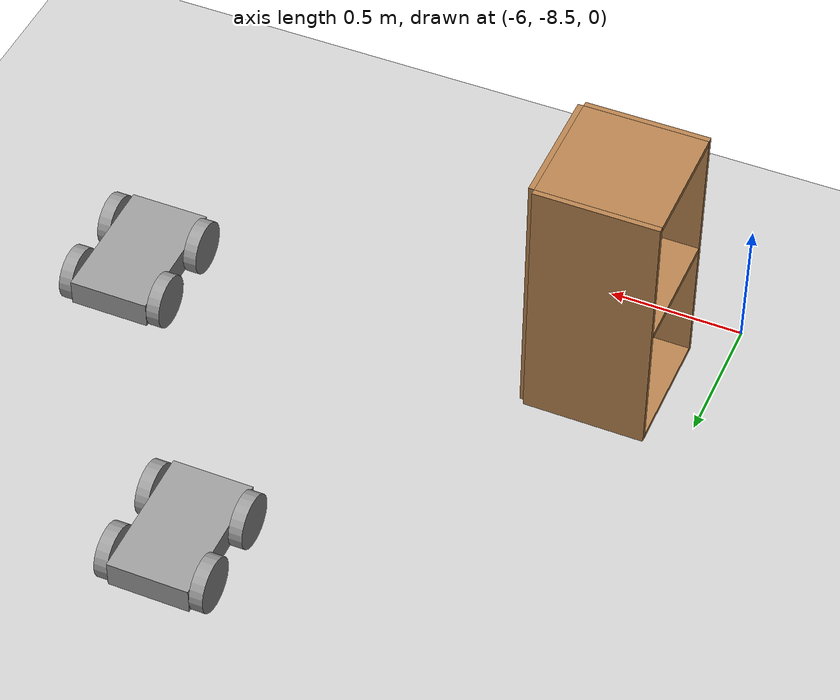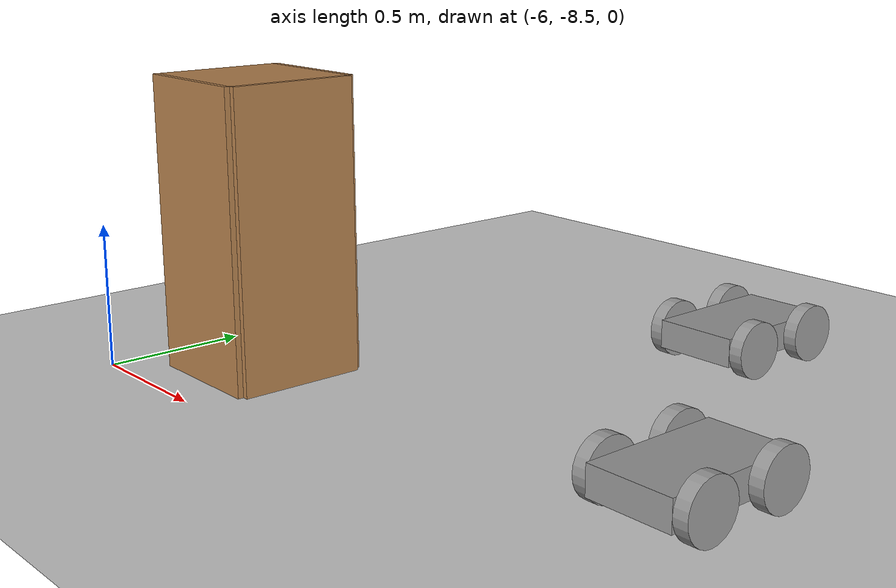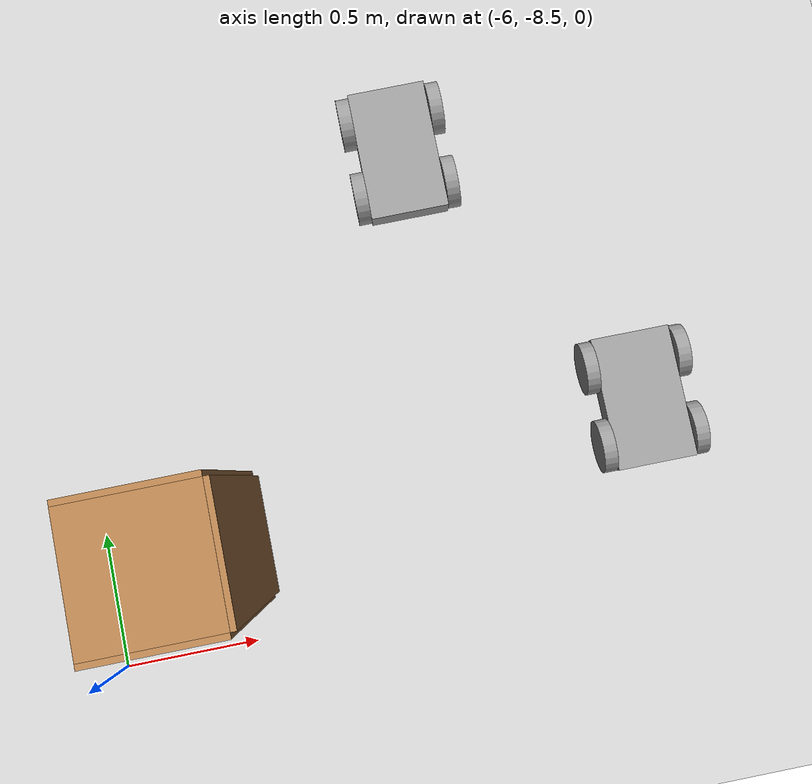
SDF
<sdf version="1.6">
 <world name="default">
  <model name="ground_plane">
   <static>1</static>
   <link name="link">
    <collision name="collision">
     <geometry><plane><normal>0 0 1</normal><size>100 100</size></plane></geometry>
     <surface><friction><ode><mu>100</mu><mu2>50</mu2></ode></friction></surface>
    </collision>
    <visual name="visual">
     <cast_shadows>0</cast_shadows>
     <geometry><plane><normal>0 0 1</normal><size>100 100</size></plane></geometry>
     <material>
      <script><uri>file://media/materials/scripts/gazebo.material</uri><name>Gazebo/Grey</name></script>
     </material>
    </visual>
   </link>
  </model>
  <model name="cabinet">
   <static>1</static>
   <link name="cabinet_bottom_plate">
    <inertial>
     <pose>0 0 -1 0 -0 0</pose>
     <inertia><ixx>2.05</ixx><ixy>0</ixy><ixz>0</ixz><iyy>2.05</iyy><iyz>0</iyz><izz>2.05</izz></inertia>
     <mass>25</mass>
    </inertial>
    <collision name="cabinet_bottom_plate_geom">
     <pose>0 0 0.01 0 -0 0</pose>
     <geometry><box><size>0.45 0.45 0.02</size></box></geometry>
    </collision>
    <visual name="cabinet_bottom_plate_geom_visual">
     <pose>0 0 0.01 0 -0 0</pose>
     <geometry><box><size>0.45 0.45 0.02</size></box></geometry>
     <material>
      <script><uri>file://media/materials/scripts/gazebo.material</uri><name>Gazebo/Wood</name></script>
     </material>
    </visual>
    <collision name="cabinet_bottom_plate_geom_cabinet_back_plate">
     <pose>0.235 0 0.51 0 -0 0</pose>
     <geometry><box><size>0.02 0.45 1.02</size></box></geometry>
    </collision>
    <visual name="cabinet_bottom_plate_geom_cabinet_back_plate_visual">
     <pose>0.235 0 0.51 0 -0 0</pose>
     <geometry><box><size>0.02 0.45 1.02</size></box></geometry>
     <material>
      <script><uri>file://media/materials/scripts/gazebo.material</uri><name>Gazebo/Wood</name></script>
     </material>
    </visual>
    <collision name="cabinet_bottom_plate_geom_cabinet_left_plate">
     <pose>0 0.235 0.51 0 -0 0</pose>
     <geometry><box><size>0.45 0.02 1.02</size></box></geometry>
    </collision>
    <visual name="cabinet_bottom_plate_geom_cabinet_left_plate_visual">
     <pose>0 0.235 0.51 0 -0 0</pose>
     <geometry><box><size>0.45 0.02 1.02</size></box></geometry>
     <material>
      <script><uri>file://media/materials/scripts/gazebo.material</uri><name>Gazebo/Wood</name></script>
     </material>
    </visual>
    <collision name="cabinet_bottom_plate_geom_cabinet_middle_plate">
     <pose>0 0 0.51 0 -0 0</pose>
     <geometry><box><size>0.45 0.45 0.02</size></box></geometry>
    </collision>
    <visual name="cabinet_bottom_plate_geom_cabinet_middle_plate_visual">
     <pose>0 0 0.51 0 -0 0</pose>
     <geometry><box><size>0.45 0.45 0.02</size></box></geometry>
     <material>
      <script><uri>file://media/materials/scripts/gazebo.material</uri><name>Gazebo/Wood</name></script>
     </material>
    </visual>
    <collision name="cabinet_bottom_plate_geom_cabinet_right_plate">
     <pose>0 -0.235 0.51 0 -0 0</pose>
     <geometry><box><size>0.45 0.02 1.02</size></box></geometry>
    </collision>
    <visual name="cabinet_bottom_plate_geom_cabinet_right_plate_visual">
     <pose>0 -0.235 0.51 0 -0 0</pose>
     <geometry><box><size>0.45 0.02 1.02</size></box></geometry>
     <material>
      <script><uri>file://media/materials/scripts/gazebo.material</uri><name>Gazebo/Wood</name></script>
     </material>
    </visual>
    <collision name="cabinet_bottom_plate_geom_cabinet_top_plate">
     <pose>0 0 1.01 0 -0 0</pose>
     <geometry><box><size>0.45 0.45 0.02</size></box></geometry>
    </collision>
    <visual name="cabinet_bottom_plate_geom_cabinet_top_plate_visual">
     <pose>0 0 1.01 0 -0 0</pose>
     <geometry><box><size>0.45 0.45 0.02</size></box></geometry>
     <material>
      <script><uri>file://media/materials/scripts/gazebo.material</uri><name>Gazebo/Wood</name></script>
     </material>
    </visual>
   </link>
   <pose>-5.63259 -8.11186 0 0 -0 0</pose>
  </model>
  <model name="robot">
   <link name="link_0">
    <inertial>
     <mass>2</mass>
     <inertia>
      <ixx>0.166667</ixx>
      <ixy>0</ixy>
      <ixz>0</ixz>
      <iyy>0.166667</iyy>
      <iyz>0</iyz>
      <izz>0.166667</izz>
     </inertia>
    </inertial>
    <visual name="visual">
     <geometry><box><size>0.3 0.5 0.1</size></box></geometry>
     <material>
      <lighting>1</lighting>
      <script><uri>file://media/materials/scripts/gazebo.material</uri><name>Gazebo/Grey</name></script>
      <ambient>0.3 0.3 0.3 1</ambient>
      <diffuse>0.7 0.7 0.7 1</diffuse>
      <specular>0.01 0.01 0.01 1</specular>
      <emissive>0 0 0 1</emissive>
      <shader type="vertex"><normal_map>__default__</normal_map></shader>
     </material>
    </visual>
    <collision name="collision">
     <geometry><box><size>0.3 0.5 0.1</size></box></geometry>
     <surface>
      <friction>
       <ode><mu>1</mu><mu2>1</mu2><fdir1>0 0 0</fdir1><slip1>0</slip1><slip2>0</slip2></ode>
       <torsional>
        <coefficient>1</coefficient>
        <patch_radius>0</patch_radius>
        <surface_radius>0</surface_radius>
        <use_patch_radius>1</use_patch_radius>
        <ode><slip>0</slip></ode>
       </torsional>
      </friction>
      <bounce><restitution_coefficient>0</restitution_coefficient><threshold>1e+06</threshold></bounce>
      <contact>
       <collide_without_contact>0</collide_without_contact>
       <collide_without_contact_bitmask>1</collide_without_contact_bitmask>
       <collide_bitmask>1</collide_bitmask>
       <ode>
        <soft_cfm>0</soft_cfm>
        <soft_erp>0.2</soft_erp>
        <kp>1e+13</kp>
        <kd>1</kd>
        <max_vel>0.01</max_vel>
        <min_depth>0</min_depth>
       </ode>
       <bullet>
        <split_impulse>1</split_impulse>
        <split_impulse_penetration_threshold>-0.01</split_impulse_penetration_threshold>
        <soft_cfm>0</soft_cfm>
        <soft_erp>0.2</soft_erp>
        <kp>1e+13</kp>
        <kd>1</kd>
       </bullet>
      </contact>
     </surface>
    </collision>
   </link>
   <link name="link_2">
    <pose>0.17501 -0.15 0 0 1.5707 0</pose>
    <inertial>
     <mass>0.1</mass>
     <inertia><ixx>0.145833</ixx><ixy>0</ixy><ixz>0</ixz><iyy>0.145833</iyy><iyz>0</iyz><izz>0.125</izz></inertia>
     <pose>0 0 0 0 1.5707 0</pose>
    </inertial>
    <visual name="visual">
     <geometry><cylinder><radius>0.1</radius><length>0.05</length></cylinder></geometry>
     <material>
      <lighting>1</lighting>
      <script><uri>file://media/materials/scripts/gazebo.material</uri><name>Gazebo/Grey</name></script>
      <ambient>0.3 0.3 0.3 1</ambient>
      <diffuse>0.7 0.7 0.7 1</diffuse>
      <specular>0.01 0.01 0.01 1</specular>
      <emissive>0 0 0 1</emissive>
      <shader type="vertex"><normal_map>__default__</normal_map></shader>
     </material>
    </visual>
    <collision name="collision">
     <geometry><cylinder><radius>0.1</radius><length>0.05</length></cylinder></geometry>
     <surface>
      <friction>
       <ode><mu>1</mu><mu2>1</mu2><fdir1>0 0 0</fdir1><slip1>0</slip1><slip2>0</slip2></ode>
       <torsional>
        <coefficient>1</coefficient>
        <patch_radius>0</patch_radius>
        <surface_radius>0</surface_radius>
        <use_patch_radius>1</use_patch_radius>
        <ode><slip>0</slip></ode>
       </torsional>
      </friction>
      <bounce><restitution_coefficient>0</restitution_coefficient><threshold>1e+06</threshold></bounce>
      <contact>
       <collide_without_contact>0</collide_without_contact>
       <collide_without_contact_bitmask>1</collide_without_contact_bitmask>
       <collide_bitmask>1</collide_bitmask>
       <ode>
        <soft_cfm>0</soft_cfm>
        <soft_erp>0.2</soft_erp>
        <kp>1e+13</kp>
        <kd>1</kd>
        <max_vel>0.01</max_vel>
        <min_depth>0</min_depth>
       </ode>
       <bullet>
        <split_impulse>1</split_impulse>
        <split_impulse_penetration_threshold>-0.01</split_impulse_penetration_threshold>
        <soft_cfm>0</soft_cfm>
        <soft_erp>0.2</soft_erp>
        <kp>1e+13</kp>
        <kd>1</kd>
       </bullet>
      </contact>
     </surface>
    </collision>
   </link>
   <link name="link_2_clone">
    <pose>0.17501 0.15 0 0 1.5707 0</pose>
    <inertial>
     <mass>0.1</mass>
     <inertia><ixx>0.145833</ixx><ixy>0</ixy><ixz>0</ixz><iyy>0.145833</iyy><iyz>0</iyz><izz>0.125</izz></inertia>
     <pose>0 0 0 0 1.5707 0</pose>
    </inertial>
    <visual name="visual">
     <geometry><cylinder><radius>0.1</radius><length>0.05</length></cylinder></geometry>
     <material>
      <lighting>1</lighting>
      <script><uri>file://media/materials/scripts/gazebo.material</uri><name>Gazebo/Grey</name></script>
      <ambient>0.3 0.3 0.3 1</ambient>
      <diffuse>0.7 0.7 0.7 1</diffuse>
      <specular>0.01 0.01 0.01 1</specular>
      <emissive>0 0 0 1</emissive>
      <shader type="vertex"><normal_map>__default__</normal_map></shader>
     </material>
    </visual>
    <collision name="collision">
     <geometry><cylinder><radius>0.1</radius><length>0.05</length></cylinder></geometry>
     <surface>
      <friction>
       <ode><mu>1</mu><mu2>1</mu2><fdir1>0 0 0</fdir1><slip1>0</slip1><slip2>0</slip2></ode>
       <torsional>
        <coefficient>1</coefficient>
        <patch_radius>0</patch_radius>
        <surface_radius>0</surface_radius>
        <use_patch_radius>1</use_patch_radius>
        <ode><slip>0</slip></ode>
       </torsional>
      </friction>
      <bounce><restitution_coefficient>0</restitution_coefficient><threshold>1e+06</threshold></bounce>
      <contact>
       <collide_without_contact>0</collide_without_contact>
       <collide_without_contact_bitmask>1</collide_without_contact_bitmask>
       <collide_bitmask>1</collide_bitmask>
       <ode>
        <soft_cfm>0</soft_cfm>
        <soft_erp>0.2</soft_erp>
        <kp>1e+13</kp>
        <kd>1</kd>
        <max_vel>0.01</max_vel>
        <min_depth>0</min_depth>
       </ode>
       <bullet>
        <split_impulse>1</split_impulse>
        <split_impulse_penetration_threshold>-0.01</split_impulse_penetration_threshold>
        <soft_cfm>0</soft_cfm>
        <soft_erp>0.2</soft_erp>
        <kp>1e+13</kp>
        <kd>1</kd>
       </bullet>
      </contact>
     </surface>
    </collision>
   </link>
   <link name="link_3">
    <pose>-0.175013 -0.15 0 0 -1.5707 0</pose>
    <inertial>
     <mass>0.1</mass>
     <inertia><ixx>0.145833</ixx><ixy>0</ixy><ixz>0</ixz><iyy>0.145833</iyy><iyz>0</iyz><izz>0.125</izz></inertia>
    </inertial>
    <visual name="visual">
     <geometry><cylinder><radius>0.1</radius><length>0.05</length></cylinder></geometry>
     <material>
      <lighting>1</lighting>
      <script><uri>file://media/materials/scripts/gazebo.material</uri><name>Gazebo/Grey</name></script>
      <ambient>0.3 0.3 0.3 1</ambient>
      <diffuse>0.7 0.7 0.7 1</diffuse>
      <specular>0.01 0.01 0.01 1</specular>
      <emissive>0 0 0 1</emissive>
      <shader type="vertex"><normal_map>__default__</normal_map></shader>
     </material>
    </visual>
    <collision name="collision">
     <geometry><cylinder><radius>0.1</radius><length>0.05</length></cylinder></geometry>
     <surface>
      <friction>
       <ode><mu>1</mu><mu2>1</mu2><fdir1>0 0 0</fdir1><slip1>0</slip1><slip2>0</slip2></ode>
       <torsional>
        <coefficient>1</coefficient>
        <patch_radius>0</patch_radius>
        <surface_radius>0</surface_radius>
        <use_patch_radius>1</use_patch_radius>
        <ode><slip>0</slip></ode>
       </torsional>
      </friction>
      <bounce><restitution_coefficient>0</restitution_coefficient><threshold>1e+06</threshold></bounce>
      <contact>
       <collide_without_contact>0</collide_without_contact>
       <collide_without_contact_bitmask>1</collide_without_contact_bitmask>
       <collide_bitmask>1</collide_bitmask>
       <ode>
        <soft_cfm>0</soft_cfm>
        <soft_erp>0.2</soft_erp>
        <kp>1e+13</kp>
        <kd>1</kd>
        <max_vel>0.01</max_vel>
        <min_depth>0</min_depth>
       </ode>
       <bullet>
        <split_impulse>1</split_impulse>
        <split_impulse_penetration_threshold>-0.01</split_impulse_penetration_threshold>
        <soft_cfm>0</soft_cfm>
        <soft_erp>0.2</soft_erp>
        <kp>1e+13</kp>
        <kd>1</kd>
       </bullet>
      </contact>
     </surface>
    </collision>
   </link>
   <link name="link_3_clone">
    <pose>-0.17501 0.15 0 0 -1.5707 0</pose>
    <inertial>
     <mass>0.1</mass>
     <inertia><ixx>0.145833</ixx><ixy>0</ixy><ixz>0</ixz><iyy>0.145833</iyy><iyz>0</iyz><izz>0.125</izz></inertia>
    </inertial>
    <visual name="visual">
     <geometry><cylinder><radius>0.1</radius><length>0.05</length></cylinder></geometry>
     <material>
      <lighting>1</lighting>
      <script><uri>file://media/materials/scripts/gazebo.material</uri><name>Gazebo/Grey</name></script>
      <ambient>0.3 0.3 0.3 1</ambient>
      <diffuse>0.7 0.7 0.7 1</diffuse>
      <specular>0.01 0.01 0.01 1</specular>
      <emissive>0 0 0 1</emissive>
      <shader type="vertex"><normal_map>__default__</normal_map></shader>
     </material>
    </visual>
    <collision name="collision">
     <geometry><cylinder><radius>0.1</radius><length>0.05</length></cylinder></geometry>
     <surface>
      <friction>
       <ode><mu>1</mu><mu2>1</mu2><fdir1>0 0 0</fdir1><slip1>0</slip1><slip2>0</slip2></ode>
       <torsional>
        <coefficient>1</coefficient>
        <patch_radius>0</patch_radius>
        <surface_radius>0</surface_radius>
        <use_patch_radius>1</use_patch_radius>
        <ode><slip>0</slip></ode>
       </torsional>
      </friction>
      <bounce><restitution_coefficient>0</restitution_coefficient><threshold>1e+06</threshold></bounce>
      <contact>
       <collide_without_contact>0</collide_without_contact>
       <collide_without_contact_bitmask>1</collide_without_contact_bitmask>
       <collide_bitmask>1</collide_bitmask>
       <ode>
        <soft_cfm>0</soft_cfm>
        <soft_erp>0.2</soft_erp>
        <kp>1e+13</kp>
        <kd>1</kd>
        <max_vel>0.01</max_vel>
        <min_depth>0</min_depth>
       </ode>
       <bullet>
        <split_impulse>1</split_impulse>
        <split_impulse_penetration_threshold>-0.01</split_impulse_penetration_threshold>
        <soft_cfm>0</soft_cfm>
        <soft_erp>0.2</soft_erp>
        <kp>1e+13</kp>
        <kd>1</kd>
       </bullet>
      </contact>
     </surface>
    </collision>
   </link>
   <joint name="link_0_JOINT_0" type="revolute">
    <parent>link_0</parent>
    <child>link_2</child>
    <axis>
     <xyz>0 0 1</xyz>
     <use_parent_model_frame>0</use_parent_model_frame>
     <limit>
      <lower>-1.79769e+308</lower>
      <upper>1.79769e+308</upper>
      <effort>-1</effort>
      <velocity>-1</velocity>
     </limit>
     <dynamics>
      <spring_reference>0</spring_reference>
      <spring_stiffness>0</spring_stiffness>
      <damping>0</damping>
     </dynamics>
    </axis>
    <physics>
     <ode><limit><cfm>0</cfm><erp>0.2</erp></limit><suspension><cfm>0</cfm><erp>0.2</erp></suspension></ode>
    </physics>
   </joint>
   <joint name="link_0_JOINT_4" type="revolute">
    <parent>link_0</parent>
    <child>link_3</child>
    <axis>
     <xyz>0 0 1</xyz>
     <use_parent_model_frame>0</use_parent_model_frame>
     <limit>
      <lower>-1.79769e+308</lower>
      <upper>1.79769e+308</upper>
      <effort>-1</effort>
      <velocity>-1</velocity>
     </limit>
     <dynamics>
      <spring_reference>0</spring_reference>
      <spring_stiffness>0</spring_stiffness>
      <damping>0</damping>
     </dynamics>
    </axis>
    <physics>
     <ode><limit><cfm>0</cfm><erp>0.2</erp></limit><suspension><cfm>0</cfm><erp>0.2</erp></suspension></ode>
    </physics>
   </joint>
   <joint name="link_0_JOINT_5" type="revolute">
    <parent>link_0</parent>
    <child>link_2_clone</child>
    <axis>
     <xyz>0 0 1</xyz>
     <use_parent_model_frame>0</use_parent_model_frame>
     <limit>
      <lower>-1.79769e+308</lower>
      <upper>1.79769e+308</upper>
      <effort>-1</effort>
      <velocity>-1</velocity>
     </limit>
     <dynamics>
      <spring_reference>0</spring_reference>
      <spring_stiffness>0</spring_stiffness>
      <damping>0</damping>
     </dynamics>
    </axis>
    <physics>
     <ode><limit><cfm>0</cfm><erp>0.2</erp></limit><suspension><cfm>0</cfm><erp>0.2</erp></suspension></ode>
    </physics>
   </joint>
   <joint name="link_0_JOINT_6" type="revolute">
    <parent>link_0</parent>
    <child>link_3_clone</child>
    <axis>
     <xyz>0 0 1</xyz>
     <use_parent_model_frame>0</use_parent_model_frame>
     <limit>
      <lower>-1.79769e+308</lower>
      <upper>1.79769e+308</upper>
      <effort>-1</effort>
      <velocity>-1</velocity>
     </limit>
     <dynamics>
      <spring_reference>0</spring_reference>
      <spring_stiffness>0</spring_stiffness>
      <damping>0</damping>
     </dynamics>
    </axis>
    <physics>
     <ode><limit><cfm>0</cfm><erp>0.2</erp></limit><suspension><cfm>0</cfm><erp>0.2</erp></suspension></ode>
    </physics>
   </joint>
   <static>0</static>
   <pose>-4.61407 -6.76882 0.1 -1.8e-05 4e-06 0.000271</pose>
  </model>
  <model name="robot_clone">
   <link name="link_0">
    <inertial>
     <mass>2</mass>
     <inertia>
      <ixx>0.166667</ixx>
      <ixy>0</ixy>
      <ixz>0</ixz>
      <iyy>0.166667</iyy>
      <iyz>0</iyz>
      <izz>0.166667</izz>
     </inertia>
    </inertial>
    <visual name="visual">
     <geometry><box><size>0.3 0.5 0.1</size></box></geometry>
     <material>
      <lighting>1</lighting>
      <script><uri>file://media/materials/scripts/gazebo.material</uri><name>Gazebo/Grey</name></script>
      <ambient>0.3 0.3 0.3 1</ambient>
      <diffuse>0.7 0.7 0.7 1</diffuse>
      <specular>0.01 0.01 0.01 1</specular>
      <emissive>0 0 0 1</emissive>
      <shader type="vertex"><normal_map>__default__</normal_map></shader>
     </material>
    </visual>
    <collision name="collision">
     <geometry><box><size>0.3 0.5 0.1</size></box></geometry>
     <surface>
      <friction>
       <ode><mu>1</mu><mu2>1</mu2><fdir1>0 0 0</fdir1><slip1>0</slip1><slip2>0</slip2></ode>
       <torsional>
        <coefficient>1</coefficient>
        <patch_radius>0</patch_radius>
        <surface_radius>0</surface_radius>
        <use_patch_radius>1</use_patch_radius>
        <ode><slip>0</slip></ode>
       </torsional>
      </friction>
      <bounce><restitution_coefficient>0</restitution_coefficient><threshold>1e+06</threshold></bounce>
      <contact>
       <collide_without_contact>0</collide_without_contact>
       <collide_without_contact_bitmask>1</collide_without_contact_bitmask>
       <collide_bitmask>1</collide_bitmask>
       <ode>
        <soft_cfm>0</soft_cfm>
        <soft_erp>0.2</soft_erp>
        <kp>1e+13</kp>
        <kd>1</kd>
        <max_vel>0.01</max_vel>
        <min_depth>0</min_depth>
       </ode>
       <bullet>
        <split_impulse>1</split_impulse>
        <split_impulse_penetration_threshold>-0.01</split_impulse_penetration_threshold>
        <soft_cfm>0</soft_cfm>
        <soft_erp>0.2</soft_erp>
        <kp>1e+13</kp>
        <kd>1</kd>
       </bullet>
      </contact>
     </surface>
    </collision>
   </link>
   <link name="link_2">
    <pose>0.17501 -0.15 0 0 1.5707 0</pose>
    <inertial>
     <mass>0.1</mass>
     <inertia><ixx>0.145833</ixx><ixy>0</ixy><ixz>0</ixz><iyy>0.145833</iyy><iyz>0</iyz><izz>0.125</izz></inertia>
     <pose>0 0 0 0 1.5707 0</pose>
    </inertial>
    <visual name="visual">
     <geometry><cylinder><radius>0.1</radius><length>0.05</length></cylinder></geometry>
     <material>
      <lighting>1</lighting>
      <script><uri>file://media/materials/scripts/gazebo.material</uri><name>Gazebo/Grey</name></script>
      <ambient>0.3 0.3 0.3 1</ambient>
      <diffuse>0.7 0.7 0.7 1</diffuse>
      <specular>0.01 0.01 0.01 1</specular>
      <emissive>0 0 0 1</emissive>
      <shader type="vertex"><normal_map>__default__</normal_map></shader>
     </material>
    </visual>
    <collision name="collision">
     <geometry><cylinder><radius>0.1</radius><length>0.05</length></cylinder></geometry>
     <surface>
      <friction>
       <ode><mu>1</mu><mu2>1</mu2><fdir1>0 0 0</fdir1><slip1>0</slip1><slip2>0</slip2></ode>
       <torsional>
        <coefficient>1</coefficient>
        <patch_radius>0</patch_radius>
        <surface_radius>0</surface_radius>
        <use_patch_radius>1</use_patch_radius>
        <ode><slip>0</slip></ode>
       </torsional>
      </friction>
      <bounce><restitution_coefficient>0</restitution_coefficient><threshold>1e+06</threshold></bounce>
      <contact>
       <collide_without_contact>0</collide_without_contact>
       <collide_without_contact_bitmask>1</collide_without_contact_bitmask>
       <collide_bitmask>1</collide_bitmask>
       <ode>
        <soft_cfm>0</soft_cfm>
        <soft_erp>0.2</soft_erp>
        <kp>1e+13</kp>
        <kd>1</kd>
        <max_vel>0.01</max_vel>
        <min_depth>0</min_depth>
       </ode>
       <bullet>
        <split_impulse>1</split_impulse>
        <split_impulse_penetration_threshold>-0.01</split_impulse_penetration_threshold>
        <soft_cfm>0</soft_cfm>
        <soft_erp>0.2</soft_erp>
        <kp>1e+13</kp>
        <kd>1</kd>
       </bullet>
      </contact>
     </surface>
    </collision>
   </link>
   <link name="link_2_clone">
    <pose>0.17501 0.15 0 0 1.5707 0</pose>
    <inertial>
     <mass>0.1</mass>
     <inertia><ixx>0.145833</ixx><ixy>0</ixy><ixz>0</ixz><iyy>0.145833</iyy><iyz>0</iyz><izz>0.125</izz></inertia>
     <pose>0 0 0 0 1.5707 0</pose>
    </inertial>
    <visual name="visual">
     <geometry><cylinder><radius>0.1</radius><length>0.05</length></cylinder></geometry>
     <material>
      <lighting>1</lighting>
      <script><uri>file://media/materials/scripts/gazebo.material</uri><name>Gazebo/Grey</name></script>
      <ambient>0.3 0.3 0.3 1</ambient>
      <diffuse>0.7 0.7 0.7 1</diffuse>
      <specular>0.01 0.01 0.01 1</specular>
      <emissive>0 0 0 1</emissive>
      <shader type="vertex"><normal_map>__default__</normal_map></shader>
     </material>
    </visual>
    <collision name="collision">
     <geometry><cylinder><radius>0.1</radius><length>0.05</length></cylinder></geometry>
     <surface>
      <friction>
       <ode><mu>1</mu><mu2>1</mu2><fdir1>0 0 0</fdir1><slip1>0</slip1><slip2>0</slip2></ode>
       <torsional>
        <coefficient>1</coefficient>
        <patch_radius>0</patch_radius>
        <surface_radius>0</surface_radius>
        <use_patch_radius>1</use_patch_radius>
        <ode><slip>0</slip></ode>
       </torsional>
      </friction>
      <bounce><restitution_coefficient>0</restitution_coefficient><threshold>1e+06</threshold></bounce>
      <contact>
       <collide_without_contact>0</collide_without_contact>
       <collide_without_contact_bitmask>1</collide_without_contact_bitmask>
       <collide_bitmask>1</collide_bitmask>
       <ode>
        <soft_cfm>0</soft_cfm>
        <soft_erp>0.2</soft_erp>
        <kp>1e+13</kp>
        <kd>1</kd>
        <max_vel>0.01</max_vel>
        <min_depth>0</min_depth>
       </ode>
       <bullet>
        <split_impulse>1</split_impulse>
        <split_impulse_penetration_threshold>-0.01</split_impulse_penetration_threshold>
        <soft_cfm>0</soft_cfm>
        <soft_erp>0.2</soft_erp>
        <kp>1e+13</kp>
        <kd>1</kd>
       </bullet>
      </contact>
     </surface>
    </collision>
   </link>
   <link name="link_3">
    <pose>-0.175013 -0.15 0 0 -1.5707 0</pose>
    <inertial>
     <mass>0.1</mass>
     <inertia><ixx>0.145833</ixx><ixy>0</ixy><ixz>0</ixz><iyy>0.145833</iyy><iyz>0</iyz><izz>0.125</izz></inertia>
    </inertial>
    <visual name="visual">
     <geometry><cylinder><radius>0.1</radius><length>0.05</length></cylinder></geometry>
     <material>
      <lighting>1</lighting>
      <script><uri>file://media/materials/scripts/gazebo.material</uri><name>Gazebo/Grey</name></script>
      <ambient>0.3 0.3 0.3 1</ambient>
      <diffuse>0.7 0.7 0.7 1</diffuse>
      <specular>0.01 0.01 0.01 1</specular>
      <emissive>0 0 0 1</emissive>
      <shader type="vertex"><normal_map>__default__</normal_map></shader>
     </material>
    </visual>
    <collision name="collision">
     <geometry><cylinder><radius>0.1</radius><length>0.05</length></cylinder></geometry>
     <surface>
      <friction>
       <ode><mu>1</mu><mu2>1</mu2><fdir1>0 0 0</fdir1><slip1>0</slip1><slip2>0</slip2></ode>
       <torsional>
        <coefficient>1</coefficient>
        <patch_radius>0</patch_radius>
        <surface_radius>0</surface_radius>
        <use_patch_radius>1</use_patch_radius>
        <ode><slip>0</slip></ode>
       </torsional>
      </friction>
      <bounce><restitution_coefficient>0</restitution_coefficient><threshold>1e+06</threshold></bounce>
      <contact>
       <collide_without_contact>0</collide_without_contact>
       <collide_without_contact_bitmask>1</collide_without_contact_bitmask>
       <collide_bitmask>1</collide_bitmask>
       <ode>
        <soft_cfm>0</soft_cfm>
        <soft_erp>0.2</soft_erp>
        <kp>1e+13</kp>
        <kd>1</kd>
        <max_vel>0.01</max_vel>
        <min_depth>0</min_depth>
       </ode>
       <bullet>
        <split_impulse>1</split_impulse>
        <split_impulse_penetration_threshold>-0.01</split_impulse_penetration_threshold>
        <soft_cfm>0</soft_cfm>
        <soft_erp>0.2</soft_erp>
        <kp>1e+13</kp>
        <kd>1</kd>
       </bullet>
      </contact>
     </surface>
    </collision>
   </link>
   <link name="link_3_clone">
    <pose>-0.17501 0.15 0 0 -1.5707 0</pose>
    <inertial>
     <mass>0.1</mass>
     <inertia><ixx>0.145833</ixx><ixy>0</ixy><ixz>0</ixz><iyy>0.145833</iyy><iyz>0</iyz><izz>0.125</izz></inertia>
    </inertial>
    <visual name="visual">
     <geometry><cylinder><radius>0.1</radius><length>0.05</length></cylinder></geometry>
     <material>
      <lighting>1</lighting>
      <script><uri>file://media/materials/scripts/gazebo.material</uri><name>Gazebo/Grey</name></script>
      <ambient>0.3 0.3 0.3 1</ambient>
      <diffuse>0.7 0.7 0.7 1</diffuse>
      <specular>0.01 0.01 0.01 1</specular>
      <emissive>0 0 0 1</emissive>
      <shader type="vertex"><normal_map>__default__</normal_map></shader>
     </material>
    </visual>
    <collision name="collision">
     <geometry><cylinder><radius>0.1</radius><length>0.05</length></cylinder></geometry>
     <surface>
      <friction>
       <ode><mu>1</mu><mu2>1</mu2><fdir1>0 0 0</fdir1><slip1>0</slip1><slip2>0</slip2></ode>
       <torsional>
        <coefficient>1</coefficient>
        <patch_radius>0</patch_radius>
        <surface_radius>0</surface_radius>
        <use_patch_radius>1</use_patch_radius>
        <ode><slip>0</slip></ode>
       </torsional>
      </friction>
      <bounce><restitution_coefficient>0</restitution_coefficient><threshold>1e+06</threshold></bounce>
      <contact>
       <collide_without_contact>0</collide_without_contact>
       <collide_without_contact_bitmask>1</collide_without_contact_bitmask>
       <collide_bitmask>1</collide_bitmask>
       <ode>
        <soft_cfm>0</soft_cfm>
        <soft_erp>0.2</soft_erp>
        <kp>1e+13</kp>
        <kd>1</kd>
        <max_vel>0.01</max_vel>
        <min_depth>0</min_depth>
       </ode>
       <bullet>
        <split_impulse>1</split_impulse>
        <split_impulse_penetration_threshold>-0.01</split_impulse_penetration_threshold>
        <soft_cfm>0</soft_cfm>
        <soft_erp>0.2</soft_erp>
        <kp>1e+13</kp>
        <kd>1</kd>
       </bullet>
      </contact>
     </surface>
    </collision>
   </link>
   <joint name="link_0_JOINT_0" type="revolute">
    <parent>link_0</parent>
    <child>link_2</child>
    <axis>
     <xyz>0 0 1</xyz>
     <use_parent_model_frame>0</use_parent_model_frame>
     <limit>
      <lower>-1.79769e+308</lower>
      <upper>1.79769e+308</upper>
      <effort>-1</effort>
      <velocity>-1</velocity>
     </limit>
     <dynamics>
      <spring_reference>0</spring_reference>
      <spring_stiffness>0</spring_stiffness>
      <damping>0</damping>
     </dynamics>
    </axis>
    <physics>
     <ode><limit><cfm>0</cfm><erp>0.2</erp></limit><suspension><cfm>0</cfm><erp>0.2</erp></suspension></ode>
    </physics>
   </joint>
   <joint name="link_0_JOINT_4" type="revolute">
    <parent>link_0</parent>
    <child>link_3</child>
    <axis>
     <xyz>0 0 1</xyz>
     <use_parent_model_frame>0</use_parent_model_frame>
     <limit>
      <lower>-1.79769e+308</lower>
      <upper>1.79769e+308</upper>
      <effort>-1</effort>
      <velocity>-1</velocity>
     </limit>
     <dynamics>
      <spring_reference>0</spring_reference>
      <spring_stiffness>0</spring_stiffness>
      <damping>0</damping>
     </dynamics>
    </axis>
    <physics>
     <ode><limit><cfm>0</cfm><erp>0.2</erp></limit><suspension><cfm>0</cfm><erp>0.2</erp></suspension></ode>
    </physics>
   </joint>
   <joint name="link_0_JOINT_5" type="revolute">
    <parent>link_0</parent>
    <child>link_2_clone</child>
    <axis>
     <xyz>0 0 1</xyz>
     <use_parent_model_frame>0</use_parent_model_frame>
     <limit>
      <lower>-1.79769e+308</lower>
      <upper>1.79769e+308</upper>
      <effort>-1</effort>
      <velocity>-1</velocity>
     </limit>
     <dynamics>
      <spring_reference>0</spring_reference>
      <spring_stiffness>0</spring_stiffness>
      <damping>0</damping>
     </dynamics>
    </axis>
    <physics>
     <ode><limit><cfm>0</cfm><erp>0.2</erp></limit><suspension><cfm>0</cfm><erp>0.2</erp></suspension></ode>
    </physics>
   </joint>
   <joint name="link_0_JOINT_6" type="revolute">
    <parent>link_0</parent>
    <child>link_3_clone</child>
    <axis>
     <xyz>0 0 1</xyz>
     <use_parent_model_frame>0</use_parent_model_frame>
     <limit>
      <lower>-1.79769e+308</lower>
      <upper>1.79769e+308</upper>
      <effort>-1</effort>
      <velocity>-1</velocity>
     </limit>
     <dynamics>
      <spring_reference>0</spring_reference>
      <spring_stiffness>0</spring_stiffness>
      <damping>0</damping>
     </dynamics>
    </axis>
    <physics>
     <ode><limit><cfm>0</cfm><erp>0.2</erp></limit><suspension><cfm>0</cfm><erp>0.2</erp></suspension></ode>
    </physics>
   </joint>
   <static>0</static>
   <pose>-3.89477 -7.88664 0.1 -1.8e-05 4e-06 0.000271</pose>
  </model>
 </world>
</sdf>
